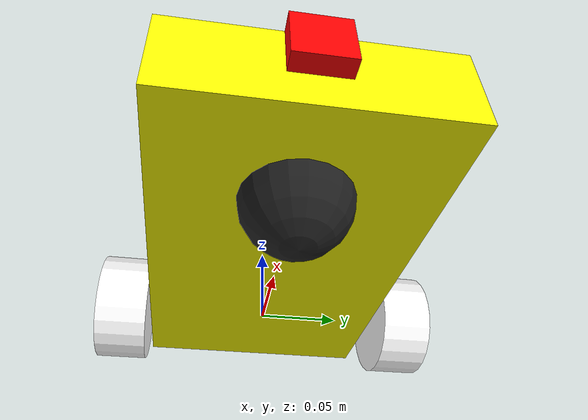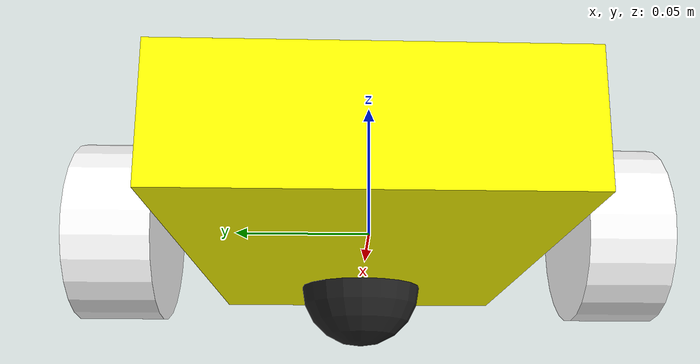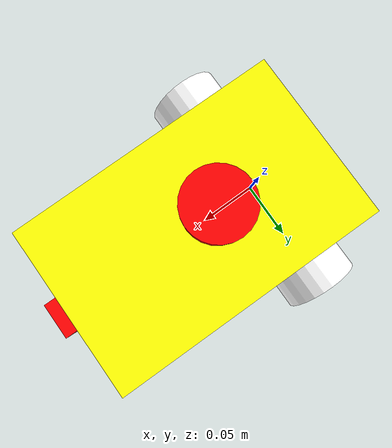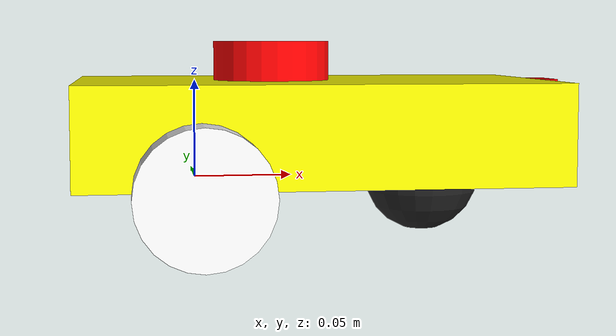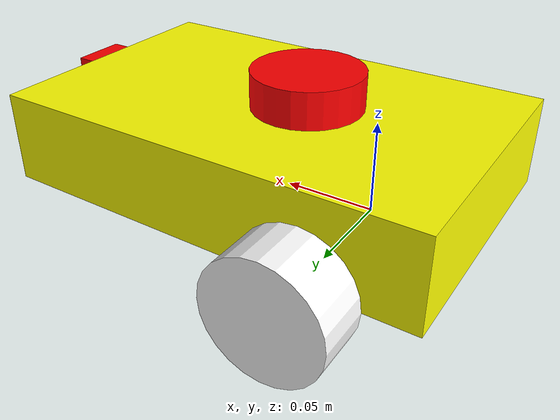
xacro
<?xml version="1.0"?>
<robot xmlns:xacro="http://www.ros.org/wiki/xacro"  name="robot">

    <xacro:arg name="use_ros2_control" default="true"/>
    <xacro:arg name="sim_mode" default="false"/>

    <xacro:include filename="/home/thanhtan/ros_ws/src/my_bot/description/robot_core.xacro" />

    <xacro:if value="$(arg use_ros2_control)">
        <xacro:include filename="/home/thanhtan/ros_ws/src/my_bot/description/ros2_control.xacro" />
    </xacro:if>
    <xacro:unless value="$(arg use_ros2_control)">
        <xacro:include filename="/home/thanhtan/ros_ws/src/my_bot/description/gazebo_control.xacro" />
    </xacro:unless>
    <xacro:include filename="/home/thanhtan/ros_ws/src/my_bot/description/lidar.xacro" />
    <xacro:include filename="/home/thanhtan/ros_ws/src/my_bot/description/camera.xacro" />

</robot>

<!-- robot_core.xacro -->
<robot xmlns:xacro="http://www.ros.org/wiki/xacro">

   <xacro:include filename="/home/thanhtan/ros_ws/src/my_bot/description/inertial_macros.xacro"/>

     <!--Thiết lập vật liệu và màu sắc tổng thế cho robot-->
     <material name="white">
        <color rgba="1 1 1 1"/>
     </material>
     <material name="blue">
        <color rgba="0 0.255 0.255 1"/>
     </material>
     <material name="yellow">
        <color rgba="1 1 0 1"/>
     </material>
     <material name="black">
        <color rgba="0 0 0 1"/>
     </material>
     <material name="red">
      <color rgba="1 0 0 1"/>
   </material>

     <!-- Kích thước tổng quan thân robot (0.18 x 0.13 x 0.5)(d x r x c)  m  có nghĩa là sẽ không có sự di chuyển giữa các liên kết nối với khớp này -->
     <!-- Tạo liên kết cơ sở BASE_LINK -->
     <link name="base_link">

     </link>

     <!-- Chassis_link -->

     <!-- Khai báo khớp chassis_joint với kiểu là loaị khớp cứng -->
     <joint name="chassis_joint" type="fixed">
        <parent link="base_link" /> <!-- Khai báo base_link là khớp cha của chassis_joint -->
        <child link ="chassis" /> <!-- Khai báo rằng liên kết con của khớp chassis_joint là chassis -->
        <origin xyz="-0.06 0 0" />
     </joint>

     <link name="chassis">
        <visual> <!-- Thẻ mô tả hình dạng mà chúng ta sẽ thấy của khâu chassis -->
            <origin xyz="0.12 0 0.025" />
            <geometry> <!-- Hình học của khâu -->
                <box size="0.24 0.15 0.05"/>
            </geometry>
            <material name="yellow"/>
        </visual>
        <collision> <!-- Tạo va chạm -->
         <origin xyz="0.12 0 0.025" />
         <geometry> <!-- Hình học của khâu -->
             <box size="0.24 0.15 0.05"/>
         </geometry>
         <material name="yellow"/>
         </collision>
        <xacro:inertial_box mass="2" x="0.24" y="0.15" z="0.05">
         <origin xyz="0.12 0 0.025"/>
         </xacro:inertial_box>
     </link>

     <gazebo reference="chassis">
      <material>Gazebo/White</material>
     </gazebo>

     <!-- Bánh xe Trái (LEFT WHEEL LINK) tạo khớp động quay không giới hạn Continous -->
     <joint name="left_wheel_joint" type="continuous">
      <parent link="base_link"/>
      <child link="left_wheel"/>
      <origin xyz="0 0.09 0 " rpy="-${pi/2} 0 0"/>
      <axis xyz="0 0 1"/>
     </joint>

     <link name="left_wheel">
      <visual>
         <geometry>
            <cylinder radius="0.0325" length="0.03"/>
         </geometry>
         <material name="white"/>
      </visual>
      <collision>
         <geometry>
            <cylinder radius="0.0325" length="0.03"/>
         </geometry>
         <material name="white"/>
      </collision>
      <xacro:inertial_cylinder mass="0.05" length="0.03" radius="0.0325" >
        <origin xyz="0 0 0" rpy="0 0 0"/>
      </xacro:inertial_cylinder>
      </link>

      <gazebo reference="left_wheel">
         <material>Gazebo/Blue</material>
        </gazebo>

     <!-- BÁNH XE PHẢI (RIGHT WHEEL LINK) -->
     <joint name="right_wheel_joint" type="continuous">
      <parent link="base_link"/>
      <child link="right_wheel"/>
      <origin xyz="0 -0.09 0 " rpy="${pi/2} 0 0"/>
      <axis xyz="0 0 -1"/>
     </joint>

     <link name="right_wheel">
      <visual>
         <geometry>
            <cylinder radius="0.0325" length="0.03"/>
         </geometry>
         <material name="white"/>
      </visual>
      <collision>
         <geometry>
            <cylinder radius="0.0325" length="0.03"/>
         </geometry>
         <material name="white"/>
      </collision>
      <xacro:inertial_cylinder mass="0.05" length="0.03" radius="0.0325" >
         <origin xyz="0 0 0" rpy="0 0 0"/>
       </xacro:inertial_cylinder>
      </link>

      <gazebo reference="right_wheel">
         <material>Gazebo/Blue</material>
        </gazebo>

      <!-- Bánh đa (CASTER WHEEL LINK) -->
      <joint name="caster_wheel_link" type="fixed">
        <parent link="chassis"/>
        <child link="caster_wheel"/>
        <origin xyz="0.18 0 0"/>
      </joint>

      <link name="caster_wheel">
         <visual>
            <geometry>
               <sphere radius="0.03"/>
               <material name="black"/>
            </geometry>
         </visual>
         <collision>
            <geometry>
               <sphere radius="0.03"/>
               <material name="black"/>
            </geometry>
         </collision>
         <xacro:inertial_sphere mass="0.05" radius="0.03">
            <origin xyz="0 0 0" rpy="0 0 0"/>
         </xacro:inertial_sphere>
      </link>

      <gazebo reference="caster_wheel">
         <material>Gazebo/Black</material>
         <mu1 value="0.001"/>
         <mu2 value="0.001"/>
        </gazebo>

</robot>

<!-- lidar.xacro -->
<robot xmlns:xacro="http://www.ros.org/wiki/xacro"  name="robot">

    <joint name="laser_joint" type="fixed">
        <parent link="chassis"/>
        <child link="laser_frame"/>
        <origin xyz="0.1 0 0.06" rpy="0 0 0"/>
    </joint>

    <link name="laser_frame">
        <visual>
            <geometry>
               <cylinder radius="0.03" length="0.02"/>
            </geometry>
            <material name="red"/>
         </visual>
         <collision>
            <geometry>
               <cylinder radius="0.0325" length="0.03"/>
            </geometry>
            <material name="white"/>
         </collision>
         <xacro:inertial_cylinder mass="0.05" length="0.03" radius="0.0325" >
            <origin xyz="0 0 0" rpy="0 0 0"/>
          </xacro:inertial_cylinder>
    </link>

    <gazebo reference="laser_frame">
        <material>Gazebo/Red</material>

        <sensor name="laser" type="ray">
            <pose> 0 0 0 0 0 0 </pose>
            <visualize>false</visualize>
            <update_rate>10</update_rate>
            <ray>
                <scan>
                    <horizontal>
                        <samples>360</samples>
                        <min_angle>-3.14</min_angle>
                        <max_angle>3.14</max_angle>
                    </horizontal>
                </scan>
                <range>
                    <min>0.3</min>
                    <max>12</max>
                </range>
            </ray>
            <plugin name="laser_controller" filename="libgazebo_ros_ray_sensor.so">
                <ros>
                    <argument>~/out:=scan</argument>
                </ros>
                <output_type>sensor_msgs/LaserScan</output_type>
                <frame_name>laser_frame</frame_name>
            </plugin>
        </sensor>
    </gazebo>
</robot>

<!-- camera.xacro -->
<robot xmlns:xacro="http://www.ros.org/wiki/xacro" >

    <joint name="camera_joint" type="fixed">
        <parent link="chassis"/>
        <child link="camera_link"/>
        <origin xyz="0.245 0 0.035" rpy="0 0 0"/>
    </joint>

    <link name="camera_link">
        <visual>
            <geometry>
                <box size="0.010 0.03 0.03"/>
            </geometry>
            <material name="red"/>
        </visual>
    </link>

    <joint name="camera_optical_joint" type="fixed">
        <parent link="camera_link"/>
        <child link="camera_link_optical"/>
        <origin xyz="0 0 0" rpy="${-pi/2} 0 ${-pi/2}"/>
    </joint>

    <link name="camera_link_optical"></link>

    <gazebo reference="camera_link">
        <material>Gazebo/Red</material>

        <sensor name="camera" type="camera">
            <pose> 0 0 0 0 0 0 </pose>
            <visualize>true</visualize>
            <update_rate>10</update_rate>
            <camera>
                <horizontal_fov>1.089</horizontal_fov>
                <image>
                    <format>R8G8B8</format>
                    <width>640</width>
                    <height>480</height>
                </image>
                <clip>
                    <near>0.05</near>
                    <far>8.0</far>
                </clip>
            </camera>
            <plugin name="camera_controller" filename="libgazebo_ros_camera.so">
                <frame_name>camera_link_optical</frame_name>
            </plugin>
        </sensor>
    </gazebo>

</robot>
